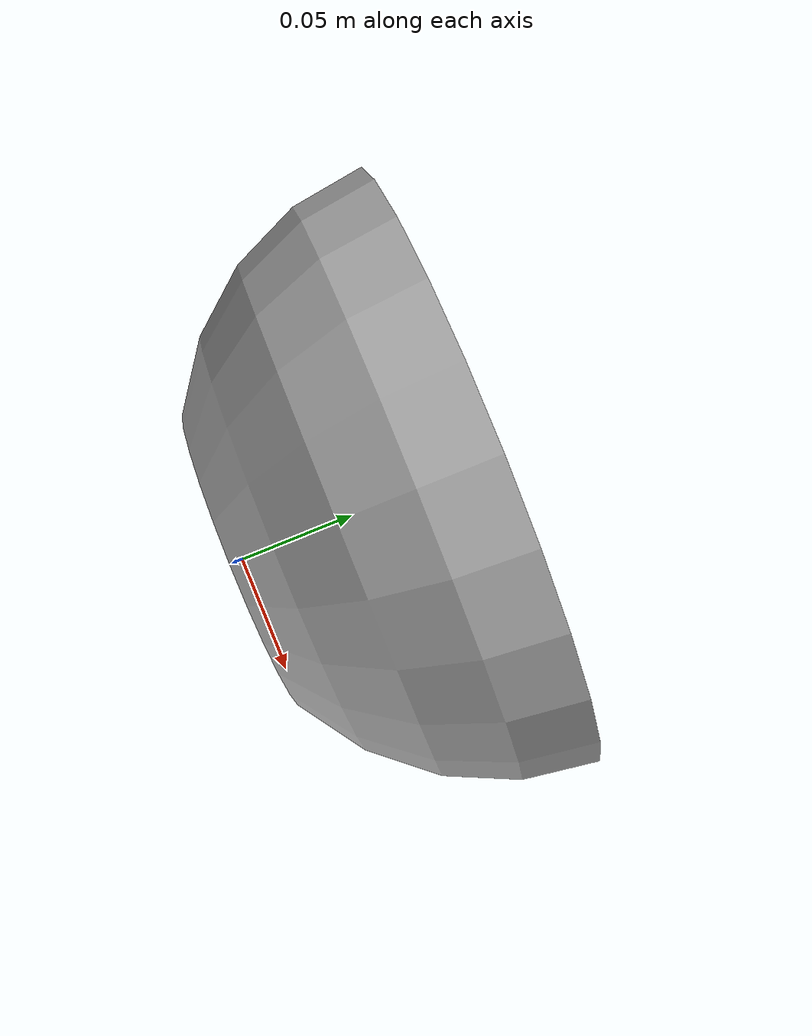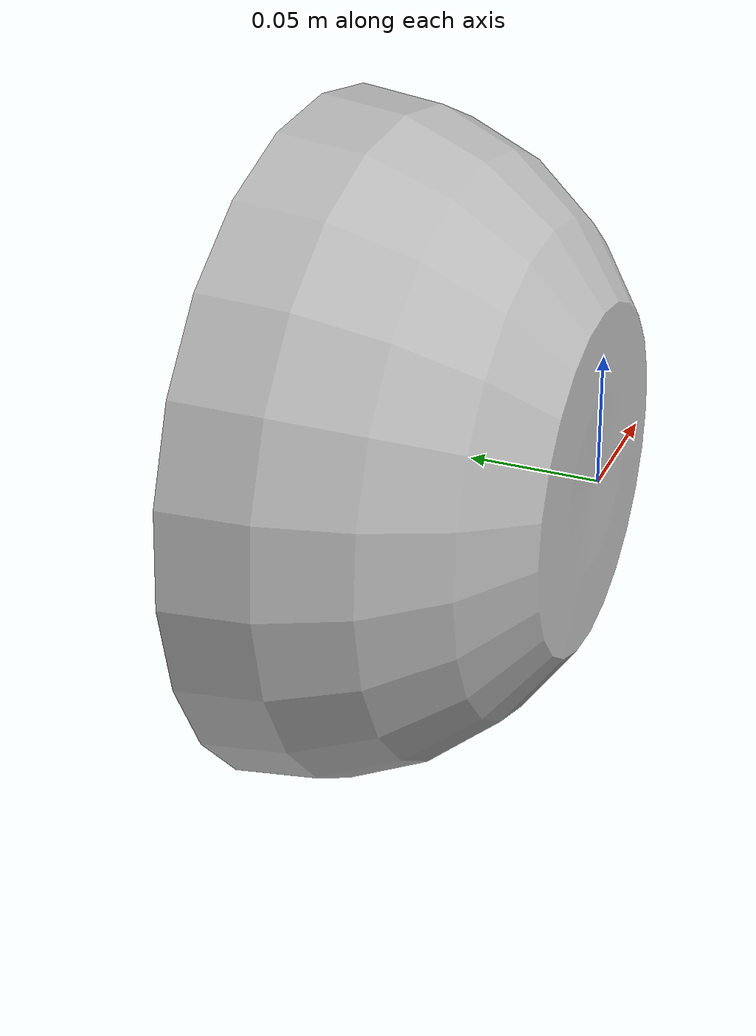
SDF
<?xml version="1.0" ?>
<sdf version="1.4">
  <model name="shelf2_bowl2_2">
    <link name="body">
      <pose>0 0 0 0 0 0</pose>
      <inertial>
        <pose>  -0.000000   0.053108  -0.000000 0 0 0</pose>
        <mass>0.5</mass>
        <inertia>
          <ixx>0.01</ixx>
          <ixy>0</ixy>
          <ixz>0</ixz>
          <iyy>0.01</iyy>
          <iyz>0</iyz>
          <izz>0.01</izz>
        </inertia>
      </inertial>
      <collision name="collision">
        <geometry>
          <mesh>
            <uri>model://bookshelf/shelf2_items/bowl2_2/bowl2_2.dae</uri>
          </mesh>
        </geometry>
      </collision>
      <visual name="visual">
        <geometry>
          <mesh>
            <uri>model://bookshelf/shelf2_items/bowl2_2/bowl2_2.dae</uri>
          </mesh>
        </geometry>
      </visual>
    </link>
  </model>
</sdf>
